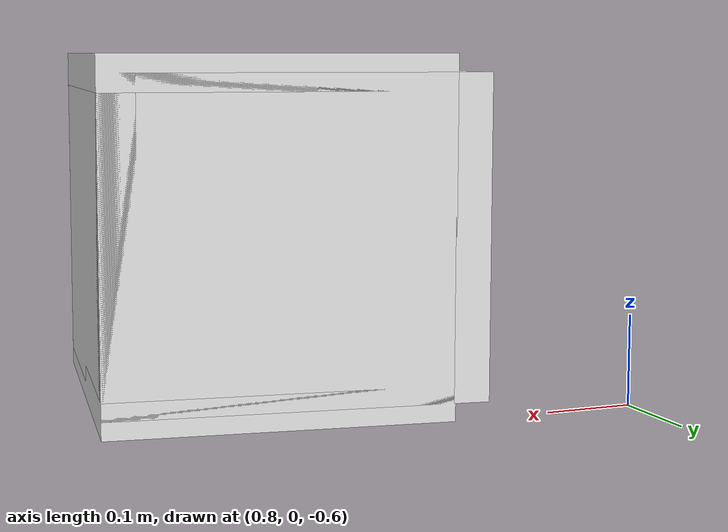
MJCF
<mujoco model="cabinet">
    <compiler angle="radian" eulerseq='zxy' />
    <option gravity = "0 0 0" />
    <option>
        <flag contact = "disable"/>
    </option>
    <statistic	extent="1.0" center="0.0 0.0 0.0"/>
    <visual>
        <map fogstart="3" fogend="5" force="0.1" znear=" 0.100000 " zfar=" 12.000000 "/>
    </visual>
    <size njmax="500" nconmax="100" />
    <actuator>
        <velocity joint="bottom_left_hinge" name="viva_revolution" kv='10'></velocity>
    </actuator>
    <asset>
        <texture builtin="flat" name="tabletex" height="32" width="32" rgb1="1 1 1" type="cube"></texture>
        <texture builtin="flat" name="objtex" height="32" width="32" rgb1="1 1 1" type="cube"></texture>
        <texture builtin="flat" name="handletex" height="32" width="32" rgb1="1 1 1" type="cube"></texture>
        <texture builtin="flat" name="wallpaper" height="32" width="32" rgb1="1 1 1" type="cube"></texture>
        <texture builtin="flat" name="kp" height="32" width="32" rgb1="1 1 1" type="cube"></texture>
        <material name="geomTable" shininess="0.03" specular="0.75" texture="tabletex"></material>
        <material name="geomObj" shininess="0.03" specular="0.75" texture="objtex"></material>
        <material name="geomHandle" shininess="0.03" specular="0.75" texture="handletex"></material>
        <material name="bg" shininess="0.03" specular="0.75" texture="wallpaper"></material>
        <material name="geomKeypad" shininess="0.03" specular="0.75" texture="kp"></material>
    </asset>
    <worldbody>
        <body name="cabinet_bottom" pos= " 1.102992 -0.412346 -0.624245 "  quat= " 0.066968 0.000000 0.000000 0.997755" >
            <inertial pos="0 0 0" mass="1" diaginertia="1 1 1" />
            <geom size= " 0.206385 0.221099 0.021526 "  type="box" material="geomObj" name="b"/>
            <body name="cabinet_left" pos= " 0.000000 -0.199573 0.193057 " >
                <inertial pos="0 0 0" mass="1" diaginertia="1 1 1" />
                <geom size= " 0.206385 0.021526 0.193057 "  type="box" material="geomObj" name="c" />
            </body>
            <body name="cabinet_right" pos= " 0.000000 0.199573 0.193057 " >
                <inertial pos="0 0 0" mass="1" diaginertia="1 1 1" />
                <geom size= " 0.206385 0.021526 0.193057 "  type="box" material="geomObj" name="d" />
            </body>
            <body name="cabinet_top" pos= " 0.000000 0.000000 0.386114 " >
                <inertial pos="0 0 0" mass="1" diaginertia="1 1 1" />
                <geom size= " 0.206385 0.221099 0.021526 "  type="box" material="geomObj" name="e"/>
            </body>
            <body name="cabinet_back" pos= " -0.184859 0.000000 0.193057 "  >
                <inertial pos="0 0 0" mass="1" diaginertia="1 1 1" />
                <geom size= " 0.021526 0.221099 0.193057 "  type="box" material="geomObj" name="f" />
            </body>
            <body name="cabinet_keypad" pos= " 0.021526 0.170172 0.193057 " >
                <inertial pos="0 0 0" mass="1" diaginertia="1 1 1" />
                <geom size= " 0.184859 0.049927 0.171531 "  type="box" material="geomKeypad" name="keypizzlemynizzle" />
            </body>
            <body name="cabinet_left_hinge" pos= " 0.206385 -0.049927 0.000000 " >
                <inertial pos= " 0.020000 0.000000 0.193057 "  mass="1" diaginertia="1 1 1" />
                <joint name="bottom_left_hinge" type="hinge" pos="0 0 0" axis="0 1 0" limited="true" range= "0 2.3"  />
                <geom size= " 0.021526 0.171172 0.193057 "  pos= " 0.020000 0.000000 0.193057 "  type="box" material="geomObj" name="g"/>
                <body name="handle_link" pos= " 0.051596 0.000000 0.343062 " >
                    <inertial pos="0 0 0" mass="1" diaginertia="1 1 1" />
                    <geom size= " 0.035527 0.023089 0.025402 "  type="box" material="geomHandle" name="h"/>
                </body>
            </body>
        </body>
        <body name="external_camera_body_0" pos="0.0 0 0.00">
            <camera euler="-1.57 1.57 0.0" fovy=" 54.280851 " name="external_camera_0" pos="0.0 0 0"></camera>
            <inertial pos= " 0.00 0.0 0.000000 " mass="1" diaginertia="1 1 1" />
            <joint name="cam_j" pos="0.0 0 0" axis = "1 0 0" type="free" />
        </body>
    </worldbody>
</mujoco>
